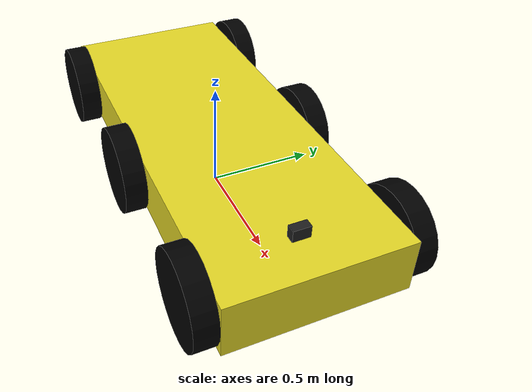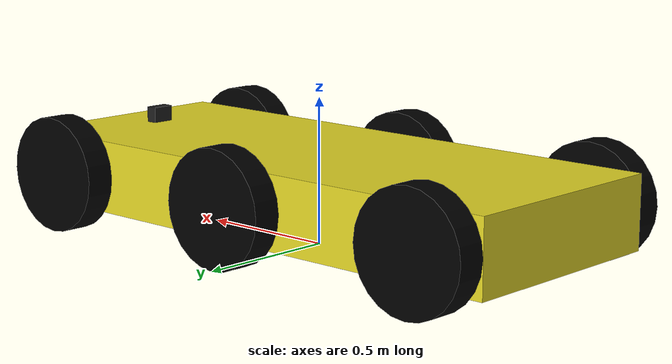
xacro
<?xml version="1.0"?>

<robot name="mrobot" xmlns:xacro="http://www.ros.org/wiki/xacro">

	<xacro:include filename="$(find mrobot_gazebo)/urdf/mrobot_body.urdf.xacro" />
	<xacro:include filename="$(find mrobot_gazebo)/urdf/camera.xacro" />

	<xacro:property name="camera_offset_x" value="0.8" />
	<xacro:property name="camera_offset_y" value="0" />
	<xacro:property name="camera_offset_z" value="0.1" />

	<!-- Body of mrobot, with plates, standoffs and Create (including sim sensors) -->
	<mrobot_body/>

	<!-- Attach the Kinect -->
	<joint name="camera_joint" type="fixed">
		<origin xyz="${camera_offset_x} ${camera_offset_y} ${camera_offset_z}" rpy="0 0 0" />
		<parent link="base_link"/>
		<child link="camera_link"/>
	</joint>

	<xacro:usb_camera prefix="camera"/>

</robot>

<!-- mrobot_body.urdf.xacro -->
<robot name="mrobot" xmlns:xacro="http://www.ros.org/wiki/xacro">

    <!-- Defining the colors used in this robot -->
    <material name="Black">
        <color rgba="0 0 0 1"/>
    </material>

    <material name="White">
        <color rgba="1 1 1 1"/>
    </material>

    <material name="Blue">
        <color rgba="0 0 1 1"/>
    </material>

    <material name="Red">
        <color rgba="1 0 0 1"/>
    </material>

    <!-- PROPERTY LIST -->
    <!--All units in m-kg-s-radians unit system -->
    <xacro:property name="M_PI" value="3.1415926535897931" />

    <!-- Main body length, width, height and mass -->
    <xacro:property name="base_mass"       value="0.5" />
    <xacro:property name="base_link_size"  value="2.0 0.8 0.2" />
    <xacro:property name="base_link_width" value="0.8" />

    <!-- Wheel radius, height and mass -->
    <xacro:property name="wheel_radius" value="0.2" />
    <xacro:property name="wheel_height" value="0.1" />
    <xacro:property name="wheel_mass"   value="0.1" />

    <!-- Macro for inertia matrix -->
    <xacro:macro name="sphere_inertial_matrix" params="m r">
        <inertial>
            <mass value="${m}" />
            <inertia ixx="${2*m*r*r/5}" ixy="0" ixz="0"
                iyy="${2*m*r*r/5}" iyz="0"
                izz="${2*m*r*r/5}" />
        </inertial>
    </xacro:macro>

    <xacro:macro name="cylinder_inertial_matrix" params="m r h">
        <inertial>
            <mass value="${m}" />
            <inertia ixx="${m*(3*r*r+h*h)/12}" ixy = "0" ixz = "0"
                iyy="${m*(3*r*r+h*h)/12}" iyz = "0"
                izz="${m*r*r/2}" />
        </inertial>
    </xacro:macro>

    <xacro:macro name="box_inertial_matrix" params="m">
        <inertial>
            <mass value="${m}" />
            <inertia ixx="0.13" ixy = "0.0" ixz = "0.0"
                     iyy="0.21" iyz = "0.0" izz="0.13" />
        </inertial>
    </xacro:macro>

    <!-- Macro for wheel joint -->
    <xacro:macro name="wheel" params="lr motor_x translateY">
        <!-- lr: left, right -->
        <link name="wheel_${lr}_link">
            <visual>
                <origin xyz="0 0 0" rpy="${M_PI/2} 0  0 " />
                <geometry>
                    <cylinder length="${wheel_height}" radius="${wheel_radius}" />
                </geometry>
                <material name="Black" />
            </visual>
            <collision>
                <origin xyz="0 0 0" rpy="${M_PI/2} 0 0 " />
                <geometry>
                    <cylinder length="${wheel_height}" radius="${wheel_radius}" />
                </geometry>
            </collision>
            <cylinder_inertial_matrix  m="${wheel_mass}" r="${wheel_radius}" h="${wheel_height}" />
        </link>

        <gazebo reference="wheel_${lr}_link">
            <material>Gazebo/Black</material>
        </gazebo>

        <joint name="base_to_wheel_${lr}_joint" type="continuous">
            <parent link="base_link"/>
            <child link="wheel_${lr}_link"/>
            <origin xyz="${motor_x} ${translateY} 0" rpy="0 0 0" />
            <axis xyz="0 1 0" rpy="0  0" />
        </joint>

        <!-- Transmission is important to link the joints and the controller -->
        <transmission name="wheel_${lr}_joint_trans">
            <type>transmission_interface/SimpleTransmission</type>
            <joint name="base_to_wheel_${lr}_joint" />
            <actuator name="wheel_${lr}_joint_motor">
                <hardwareInterface>VelocityJointInterface</hardwareInterface>
                <mechanicalReduction>1</mechanicalReduction>
            </actuator>
        </transmission>
    </xacro:macro>

    <!-- BASE-FOOTPRINT -->
    <!-- base_footprint is a fictitious link(frame) that is on the ground right below base_link origin -->
    <xacro:macro name="mrobot_body">
        <link name="base_footprint">
            <visual>
                <origin xyz="0 0 0" rpy="0 0 0" />
                <geometry>
                    <box size="0.001 0.001 0.001" />
                </geometry>
            </visual>
        </link>

        <joint name="base_footprint_joint" type="fixed">
            <origin xyz="0 0 ${wheel_radius}" rpy="0 0 0" />
            <parent link="base_footprint"/>
            <child link="base_link" />
        </joint>

        <!-- BASE-LINK -->
        <!--Actual body/chassis of the robot-->
        <link name="base_link">
            <box_inertial_matrix  m="${base_mass}" />
            <visual>
                <origin xyz=" 0 0 0" rpy="0 0 0" />
                <geometry>
                    <box size="2.0 0.8 0.25"/>
                </geometry>
                <material name="yellow" />
            </visual>

            <collision>
                <origin xyz="0 0 0" rpy="0 0 0" />
                <geometry>
                    <box size="${base_link_size}" />
                </geometry>
            </collision>
        </link>
        <gazebo reference="base_link">
            <material>Gazebo/Blue</material>
        </gazebo>

        <!-- Wheel Definitions -->
        <wheel lr="right1"  motor_x="0.8" translateY="-0.45" />
        <wheel lr="left1"  motor_x="0.8" translateY="0.45" />
        <wheel lr="right2"  motor_x="0" translateY="-0.45" />
        <wheel lr="left2"  motor_x="0" translateY="0.45" />
        <wheel lr="right3"  motor_x="-0.8" translateY="-0.45" />
        <wheel lr="left3"  motor_x="-0.8" translateY="0.45" />

        <!-- controller -->
        <gazebo>
            <plugin name="diffdrive_plugin_multiwheel" filename="libdiffdrive_plugin_multi_wheel.so">
                <alwaysOn>true</alwaysOn>
                <updateRate>100</updateRate>
                <leftJoints> base_to_wheel_right1_joint base_to_wheel_right2_joint base_to_wheel_right3_joint </leftJoints>
                <rightJoints> base_to_wheel_left1_joint base_to_wheel_left2_joint base_to_wheel_left3_joint </rightJoints>
                <wheelSeparation>0.8</wheelSeparation>
                <wheelDiameter>0.4</wheelDiameter>
                <torque>500</torque>
                <robotNamespace>/</robotNamespace>
                <robotBaseFrame>base_link</robotBaseFrame>
                <commandTopic>/cmd_vel</commandTopic>
                <publishOdometryTf>0</publishOdometryTf>
                <publishOdometryMsg>1</publishOdometryMsg>
            </plugin>
        </gazebo>

    </xacro:macro>
</robot>

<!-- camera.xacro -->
<robot xmlns:xacro="http://www.ros.org/wiki/xacro" name="camera">

    <xacro:macro name="usb_camera" params="prefix:=camera">
        <!-- Create laser reference frame -->
        <link name="${prefix}_link">
            <inertial>
                <mass value="0.1" />
                <origin xyz="0 0 0" />
                <inertia ixx="0.01" ixy="0.0" ixz="0.0"
                         iyy="0.01" iyz="0.0"
                         izz="0.01" />
            </inertial>

            <visual>
                <origin xyz=" 0 0 0 " rpy="0 0 0" />
                <geometry>
                    <box size="0.04 0.08 0.16" />
                </geometry>
                <material name="black"/>
            </visual>

            <collision>
                <origin xyz="0.0 0.0 0.0" rpy="0 0 0" />
                <geometry>
                    <box size="0.01 0.04 0.04" />
                </geometry>
            </collision>
        </link>
        <gazebo reference="${prefix}_link">
            <material>Gazebo/Black</material>
        </gazebo>

        <gazebo reference="${prefix}_link">
            <sensor type="camera" name="camera_node">
                <update_rate>30.0</update_rate>
                <camera name="head">
                    <horizontal_fov>1.3962634</horizontal_fov>
                    <image>
                        <width>1280</width>
                        <height>720</height>
                        <format>R8G8B8</format>
                    </image>
                    <clip>
                        <near>0.02</near>
                        <far>300</far>
                    </clip>
                    <noise>
                        <type>gaussian</type>
                        <mean>0.0</mean>
                        <stddev>0.007</stddev>
                    </noise>
                </camera>
                <plugin name="gazebo_camera" filename="libgazebo_ros_camera.so">
                    <alwaysOn>true</alwaysOn>
                    <updateRate>0.0</updateRate>
                    <cameraName>/camera</cameraName>
                    <imageTopicName>image_raw</imageTopicName>
                    <cameraInfoTopicName>camera_info</cameraInfoTopicName>
                    <frameName>camera_link</frameName>
                    <hackBaseline>0.07</hackBaseline>
                    <distortionK1>0.0</distortionK1>
                    <distortionK2>0.0</distortionK2>
                    <distortionK3>0.0</distortionK3>
                    <distortionT1>0.0</distortionT1>
                    <distortionT2>0.0</distortionT2>
                </plugin>
            </sensor>
        </gazebo>

    </xacro:macro>
</robot>
